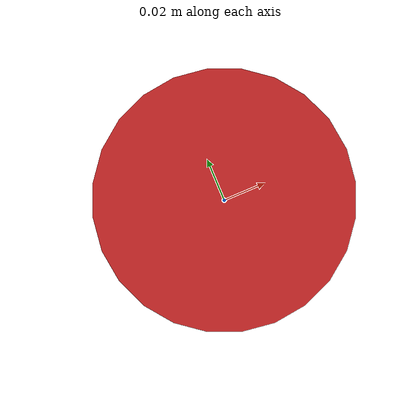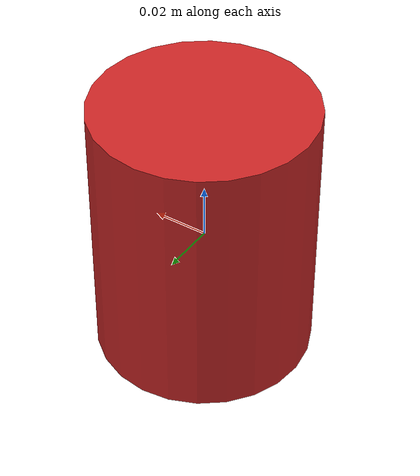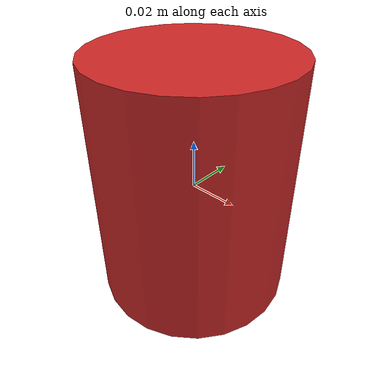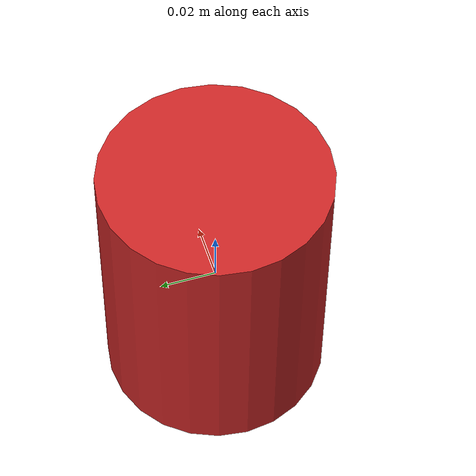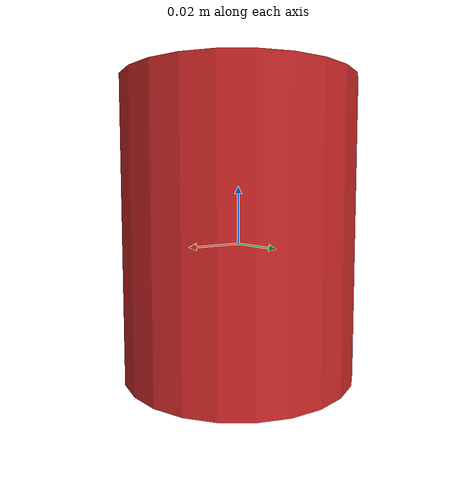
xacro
<?xml version="1.0"?>
<robot xmlns:xacro="http://www.ros.org/wiki/xacro" name="lazDar">
  <xacro:property name="base_radius" value="0.01"/>
  <xacro:property name="base_height" value="0.01"/>
  <xacro:property name="laz_radius" value="0.04"/>
  <xacro:property name="laz_height" value="0.1"/>

  <gazebo reference="laz_base">
    <material>Gazebo/Grey</material>
    <mu1>0.2</mu1>
    <mu2>0.2</mu2>
  </gazebo>

  <link name="laz_base">
    <visual>
      <geometry>
        <cylinder length="${base_height}" radius="${base_radius}"/>
      </geometry>
    </visual>

    <collision>
      <geometry>
        <cylinder length="${base_height}" radius="${base_radius}"/>
      </geometry>
    </collision>

    <inertial>
      <mass value="0.000000000001"/>
      <inertia ixx="${(1/12) * 0.1 * (3 * base_radius * base_radius + base_height * base_height)}" ixy="0" ixz="0" iyy="${(1/12) * 0.1 * (3 * base_radius * base_radius + base_height * base_height)}" iyz="0" izz="${(1/2) * 0.1 * base_radius * base_radius}"/>
    </inertial>
  </link>

  <gazebo reference="laz_rot">
    <material>Gazebo/RedGlow</material>
    <mu1>0.2</mu1>
    <mu2>0.2</mu2>
  </gazebo>

  <link name="laz_rot">
    <visual>
      <geometry>
        <cylinder length="${laz_height}" radius="${laz_radius}"/>
      </geometry>
    </visual>

    <collision>
      <geometry>
        <cylinder length="${laz_height}" radius="${laz_radius}"/>
      </geometry>
    </collision>

    <inertial>
      <mass value="0.000000001"/>
      <inertia ixx="${(1/12) * 0.1 * (3 * laz_radius * laz_radius + laz_height * laz_height)}" ixy="0" ixz="0" iyy="${(1/12) * 0.1 * (3 * laz_radius * laz_radius + laz_height * laz_height)}" iyz="0" izz="${(1/2) * 0.1 * laz_radius * laz_radius}"/>
    </inertial>
  </link>

  <joint name="lazRot" type="continuous">
    <parent link="laz_base"/>
    <child link="laz_rot"/>
    <axis xyz="0 0 1"/>
    <origin xyz = "0 0 ${base_height/2}"/>
    <dynamics friction="0.1"/>
  </joint>
</robot>
